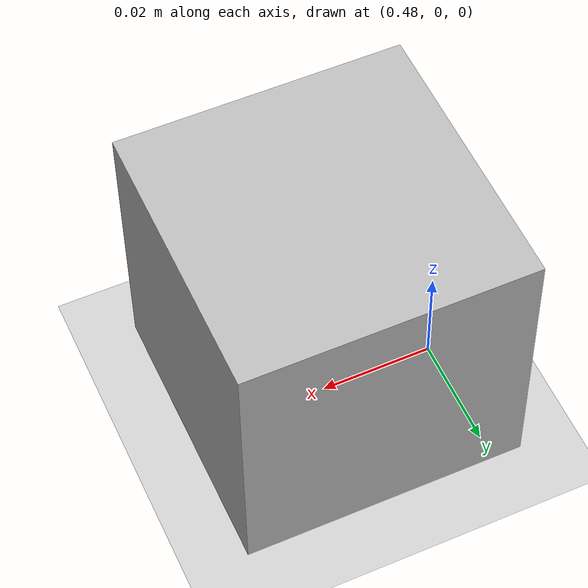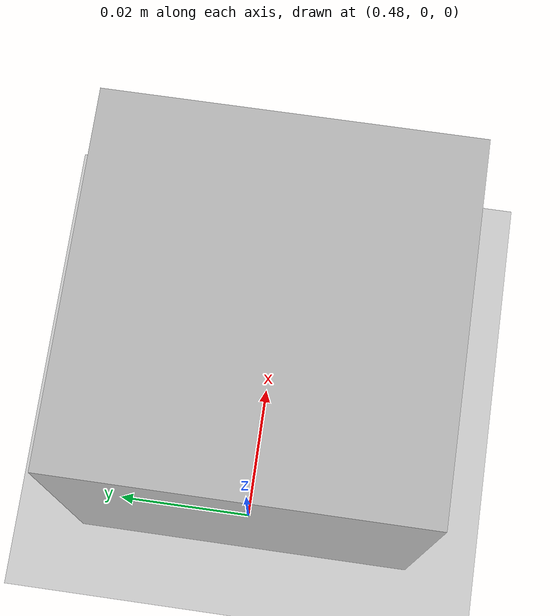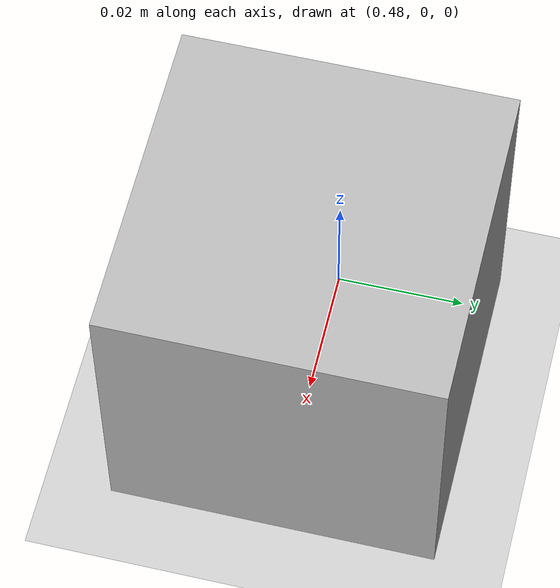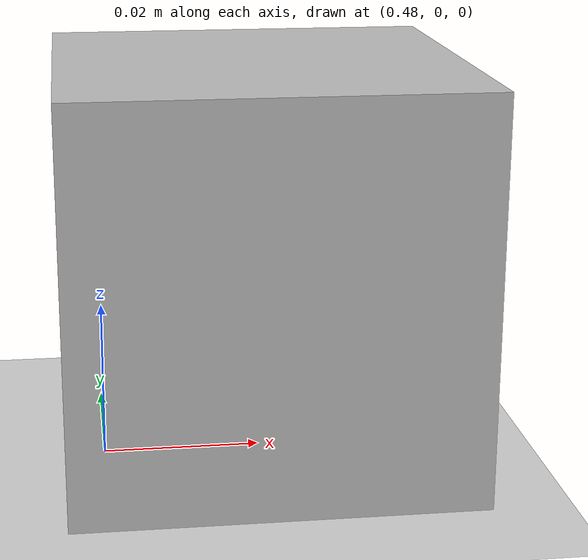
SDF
<?xml version="1.0" ?>
<sdf version="1.6">
  <world name="default">

  <physics type="ode">
      <max_step_size>0.0005</max_step_size>
      <real_time_factor>-1.5</real_time_factor>
      <real_time_update_rate>500</real_time_update_rate>
  </physics>
  <gravity>0.0 0 -1.81</gravity>

    <include>
      <uri>model://ground_plane</uri>
    </include>

    <!-- Global light source -->
    <include>
      <uri>model://sun</uri>
    </include>

    <light name='user_point_light_0' type='point'>
      <pose frame=''>-1 -1 1.1 0 0 0</pose>
      <diffuse>0.5 0.5 0.5 1</diffuse>
      <specular>0.1 0.1 0.1 1</specular>
      <attenuation>
        <range>20</range>
        <constant>0.5</constant>
        <linear>0.1</linear>
        <quadratic>0.01</quadratic>
      </attenuation>
      <cast_shadows>0</cast_shadows>
      <direction>0 0 -1</direction>
    </light>
    <light name='user_point_light_1' type='point'>
      <pose frame=''>-1 0 1.1 0 0 0</pose>
      <diffuse>0.5 0.5 0.5 1</diffuse>
      <specular>0.1 0.1 0.1 1</specular>
      <attenuation>
        <range>20</range>
        <constant>0.5</constant>
        <linear>0.1</linear>
        <quadratic>0.01</quadratic>
      </attenuation>
      <cast_shadows>0</cast_shadows>
      <direction>0 0 -1</direction>
    </light>
    <light name='user_point_light_2' type='point'>
      <pose frame=''>-1 1 1.1 0 0 0</pose>
      <diffuse>0.5 0.5 0.5 1</diffuse>
      <specular>0.1 0.1 0.1 1</specular>
      <attenuation>
        <range>20</range>
        <constant>0.5</constant>
        <linear>0.1</linear>
        <quadratic>0.01</quadratic>
      </attenuation>
      <cast_shadows>0</cast_shadows>
      <direction>0 0 -1</direction>
    </light>
    <light name='user_point_light_3' type='point'>
      <pose frame=''>0 -1 1.1 0 0 0</pose>
      <diffuse>0.5 0.5 0.5 1</diffuse>
      <specular>0.1 0.1 0.1 1</specular>
      <attenuation>
        <range>20</range>
        <constant>0.5</constant>
        <linear>0.1</linear>
        <quadratic>0.01</quadratic>
      </attenuation>
      <cast_shadows>0</cast_shadows>
      <direction>0 0 -1</direction>
    </light>
    <light name='user_point_light_4' type='point'>
      <pose frame=''>0 0 1.1 0 0 0</pose>
      <diffuse>0.5 0.5 0.5 1</diffuse>
      <specular>0.1 0.1 0.1 1</specular>
      <attenuation>
        <range>20</range>
        <constant>0.5</constant>
        <linear>0.1</linear>
        <quadratic>0.01</quadratic>
      </attenuation>
      <cast_shadows>0</cast_shadows>
      <direction>0 0 -1</direction>
    </light>
    <light name='user_point_light_5' type='point'>
      <pose frame=''>0 1 1.1 0 0 0</pose>
      <diffuse>0.5 0.5 0.5 1</diffuse>
      <specular>0.1 0.1 0.1 1</specular>
      <attenuation>
        <range>20</range>
        <constant>0.5</constant>
        <linear>0.1</linear>
        <quadratic>0.01</quadratic>
      </attenuation>
      <cast_shadows>0</cast_shadows>
      <direction>0 0 -1</direction>
    </light>
    <light name='user_point_light_6' type='point'>
      <pose frame=''>1 -1 1.1 0 0 0</pose>
      <diffuse>0.5 0.5 0.5 1</diffuse>
      <specular>0.1 0.1 0.1 1</specular>
      <attenuation>
        <range>20</range>
        <constant>0.5</constant>
        <linear>0.1</linear>
        <quadratic>0.01</quadratic>
      </attenuation>
      <cast_shadows>0</cast_shadows>
      <direction>0 0 -1</direction>
    </light>
    <light name='user_point_light_7' type='point'>
      <pose frame=''>1 0 1.1 0 0 0</pose>
      <diffuse>0.5 0.5 0.5 1</diffuse>
      <specular>0.1 0.1 0.1 1</specular>
      <attenuation>
        <range>20</range>
        <constant>0.5</constant>
        <linear>0.1</linear>
        <quadratic>0.01</quadratic>
      </attenuation>
      <cast_shadows>0</cast_shadows>
      <direction>0 0 -1</direction>
    </light>
    <light name='user_point_light_8' type='point'>
      <pose frame=''>1 1 1.1 0 0 0</pose>
      <diffuse>0.5 0.5 0.5 1</diffuse>
      <specular>0.1 0.1 0.1 1</specular>
      <attenuation>
        <range>20</range>
        <constant>0.5</constant>
        <linear>0.1</linear>
        <quadratic>0.01</quadratic>
      </attenuation>
      <cast_shadows>0</cast_shadows>
      <direction>0 0 -1</direction>
    </light>

    <model name="box">
      <pose>0.5 0 0.026 0 0 0</pose>
      <link name="box_link1">
        <collision name="collision">
          <geometry>
            <box>
              <size>0.05 0.05 0.05</size>
            </box>
          </geometry>
          <surface>
            <friction>
              <ode>
                <mu>0.5</mu>
                <mu2>0.5</mu2>
              </ode>
            </friction>
          </surface>
        </collision>
        <visual name="visual">
          <geometry>
            <box>
              <size>0.05 0.05 0.05</size>
            </box>
          </geometry>
        </visual>
        <inertial>
          <pose>0.0 0.0 0.0 0 0 0</pose>
          <mass>0.001</mass>
          <inertia>
            <ixx>0.0007</ixx>
            <ixy>0</ixy>
            <ixz>0</ixz>
            <iyy>0.0007</iyy>
            <iyz>0</iyz>
            <izz>0.0007</izz>
        </inertia>
        </inertial>
      </link>
      <plugin name="thrownobject_gazebo_plugin" filename="libthrownobject_gazebo_plugin.so">
        <update_rate>30.0</update_rate>
      </plugin>
    </model>

    <!-- Focus camera -->
    <gui fullscreen='0'>
      <camera name='user_camera'>
	      <pose>4.927360 -4.376610 3.740080 0.000000 0.275643 2.356190</pose>
	      <view_controller>orbit</view_controller>
      </camera>
    </gui>

  </world>
</sdf>
